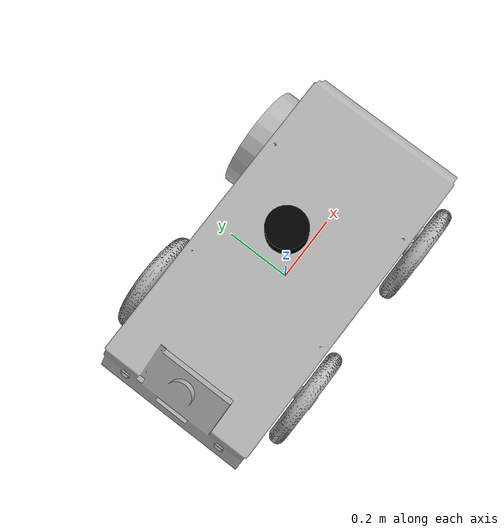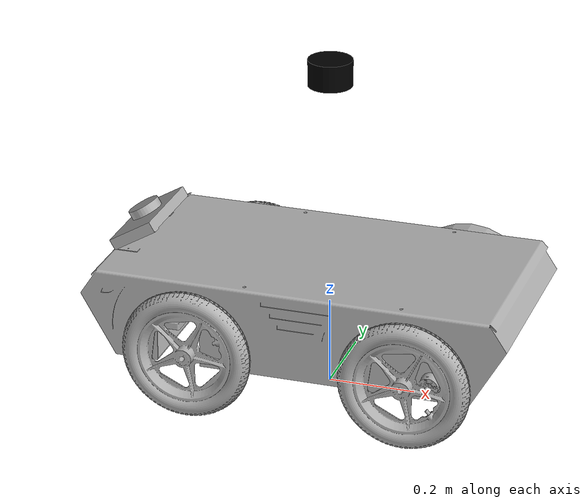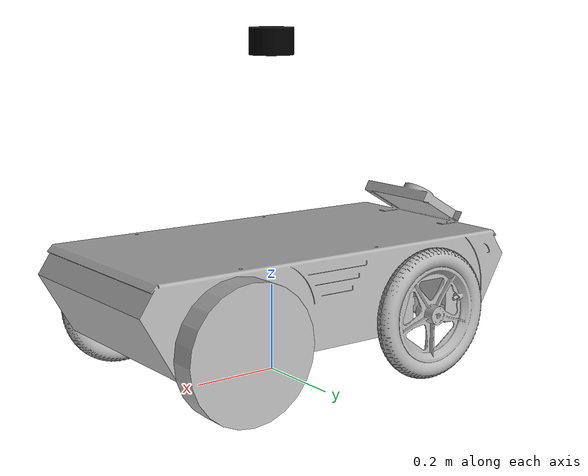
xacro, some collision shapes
<?xml version="1.0" ?>
<robot name="diadem" xmlns:xacro="http://www.ros.org/wiki/xacro">

<xacro:include filename="$(find diadem_description)/urdf/materials.xacro" />
<xacro:include filename="$(find diadem_description)/urdf/diadem.trans" />
<xacro:include filename="$(find diadem_description)/urdf/diadem.gazebo" />

<link name="base_link">
  <inertial>
    <!-- CoM slightly above geometric center; Z≈0.15 (half of 0.30m body height) -->
    <origin xyz="0.0 0.0 0.15" rpy="0 0 0"/>
    <mass value="90.0"/>
    <inertia ixx="3.112" iyy="5.595" izz="7.357" ixy="0.0" iyz="0.0" ixz="0.0"/>
  </inertial>
  <visual>
    <!-- Z offset 0.01m aligns mesh axle (Z=0.14m) with wheel joint height (Z=0.15m). Front faces +X. -->
    <origin xyz="0 0 0.01" rpy="0 0 0"/>
    <geometry>
      <mesh filename="package://diadem_description/meshes/base_link.stl" scale="0.001 0.001 0.001"/>
    </geometry>
    <material name="silver"/>
  </visual>
  <collision name="base_link_collision">
    <origin xyz="0 0 0.25" rpy="0 0 0"/>
    <geometry>
      <box size="0.42 0.38 0.24"/>
    </geometry>
  </collision>
</link>

<!-- =================== WHEELS ===================
     Radius = 0.15 m, width = 0.06 m, mass = 11.4 kg
     Ixx = Izz = m/12*(3r²+h²) = 0.068
     Iyy        = m*r²/2        = 0.128  -->

<link name="RR_wheel_1">
  <inertial>
    <origin xyz="0.0 0.0 0.0" rpy="0 0 0"/>
    <mass value="11.4"/>
    <inertia ixx="0.068" iyy="0.128" izz="0.068" ixy="0.0" iyz="0.0" ixz="0.0"/>
  </inertial>
  <visual>
    <origin xyz="-0.302688 -0.283906 -0.140288" rpy="0 0 0"/>
    <geometry>
      <mesh filename="package://diadem_description/meshes/link5_1.stl" scale="0.001 0.001 0.001"/>
    </geometry>
    <material name="silver"/>
  </visual>
  <collision name="RR_wheel_1_collision">
    <origin xyz="0 0 0" rpy="1.57079632679 0 0"/>
    <geometry>
      <cylinder radius="0.15" length="0.06"/>
    </geometry>
  </collision>
</link>

<link name="FL_wheel_1">
  <inertial>
    <origin xyz="0.0 0.0 0.0" rpy="0 0 0"/>
    <mass value="11.4"/>
    <inertia ixx="0.068" iyy="0.128" izz="0.068" ixy="0.0" iyz="0.0" ixz="0.0"/>
  </inertial>
  <visual>
    <origin xyz="0.288011 0.282104 -0.137319" rpy="0 0 0"/>
    <geometry>
      <mesh filename="package://diadem_description/meshes/link2_1.stl" scale="0.001 0.001 0.001"/>
    </geometry>
    <material name="silver"/>
  </visual>
  <collision name="FL_wheel_1_collision">
    <origin xyz="0 0 0" rpy="1.57079632679 0 0"/>
    <geometry>
      <cylinder radius="0.15" length="0.06"/>
    </geometry>
  </collision>
</link>

<link name="RL_wheel_1">
  <inertial>
    <origin xyz="0.0 0.0 0.0" rpy="0 0 0"/>
    <mass value="11.4"/>
    <inertia ixx="0.068" iyy="0.128" izz="0.068" ixy="0.0" iyz="0.0" ixz="0.0"/>
  </inertial>
  <visual>
    <origin xyz="-0.302686 0.286194 -0.140291" rpy="0 0 0"/>
    <geometry>
      <mesh filename="package://diadem_description/meshes/link4_1.stl" scale="0.001 0.001 0.001"/>
    </geometry>
    <material name="silver"/>
  </visual>
  <collision name="RL_wheel_1_collision">
    <origin xyz="0 0 0" rpy="1.57079632679 0 0"/>
    <geometry>
      <cylinder radius="0.15" length="0.06"/>
    </geometry>
  </collision>
</link>

<link name="FR_wheel_1">
  <inertial>
    <origin xyz="0.0 0.0 0.0" rpy="0 0 0"/>
    <mass value="11.4"/>
    <inertia ixx="0.068" iyy="0.128" izz="0.068" ixy="0.0" iyz="0.0" ixz="0.0"/>
  </inertial>
  <visual>
    <origin xyz="0.288015 -0.277843 -0.145030" rpy="0 0 0"/>
    <geometry>
      <mesh filename="package://diadem_description/meshes/link3_1.stl" scale="0.001 0.001 0.001"/>
    </geometry>
    <material name="silver"/>
  </visual>
  <collision name="FR_wheel_1_collision">
    <origin xyz="0 0 0" rpy="1.57079632679 0 0"/>
    <geometry>
      <cylinder radius="0.15" length="0.06"/>
    </geometry>
  </collision>
</link>

<!-- =================== LiDAR =================== -->
<!-- Modelled as RP-LiDAR A3 equivalent: r=0.05m, h=0.06m, mass=0.19kg -->
<link name="lidar">
  <inertial>
    <origin xyz="0 0 0" rpy="0 0 0"/>
    <mass value="0.19"/>
    <inertia ixx="0.0002" iyy="0.0002" izz="0.0003" ixy="0.0" iyz="0.0" ixz="0.0"/>
  </inertial>
  <visual>
    <origin xyz="0 0 0" rpy="0 0 0"/>
    <geometry>
      <cylinder radius="0.05" length="0.06"/>
    </geometry>
    <material name="black"/>
  </visual>
  <collision>
    <origin xyz="0 0 0" rpy="0 0 0"/>
    <geometry>
      <cylinder radius="0.05" length="0.06"/>
    </geometry>
  </collision>
</link>

<!-- =================== FIXED LINKS =================== -->
<link name="imu_link"/>
<link name="camera_link"/>
<link name="camera_link_optical"/>
<link name="gps_link"/>

<!-- =================== JOINTS =================== -->

<!-- IMU at ~top of body box: body H=0.30 m -->
<joint name="imu_joint" type="fixed">
    <origin rpy="0 0 0" xyz="0.0 0.0 0.30"/>
    <parent link="base_link"/>
    <child link="imu_link"/>
</joint>

<joint name="gps_joint" type="fixed">
    <origin rpy="0 0 0" xyz="0.0 0.0 0.31"/>
    <parent link="base_link"/>
    <child link="gps_link"/>
</joint>

<!-- Wheel joints
     X = ±wheelbase/2 = ±0.25 m
     Y = ±track/2     = ±0.26 m  (track=0.52m, half=0.26m)
     Z = wheel radius  = 0.15 m (wheel hub height above base_link origin)
-->

<!-- RR: Rear-Right  → X=-0.25, Y=-0.26 -->
<joint name="RR_wheel_joint" type="continuous">
  <origin xyz="-0.25 -0.26 0.15" rpy="0 0 0"/>
  <parent link="base_link"/>
  <child link="RR_wheel_1"/>
  <axis xyz="0.0 1.0 0.0"/>
</joint>

<!-- FL: Front-Left  → X=+0.25, Y=+0.26 -->
<joint name="FL_wheel_joint" type="continuous">
  <origin xyz="0.25 0.26 0.15" rpy="0 0 0"/>
  <parent link="base_link"/>
  <child link="FL_wheel_1"/>
  <axis xyz="0.0 1.0 0.0"/>
</joint>

<!-- RL: Rear-Left   → X=-0.25, Y=+0.26 -->
<joint name="RL_wheel_joint" type="continuous">
  <origin xyz="-0.25 0.26 0.15" rpy="0 0 0"/>
  <parent link="base_link"/>
  <child link="RL_wheel_1"/>
  <axis xyz="0.0 1.0 0.0"/>
</joint>

<!-- FR: Front-Right → X=+0.25, Y=-0.26 -->
<joint name="FR_wheel_joint" type="continuous">
  <origin xyz="0.25 -0.26 0.15" rpy="0 0 0"/>
  <parent link="base_link"/>
  <child link="FR_wheel_1"/>
  <axis xyz="0.0 1.0 0.0"/>
</joint>

<!-- LiDAR: mounted on top of body, centred, at body_H + half_lidar_H = 0.30+0.03 = 0.33m
     Add 0.42m additional mast to clear the body and give good scan plane -->
<joint name="lidar_joint" type="fixed">
  <origin xyz="0.0 0.0 0.75" rpy="0 0 0"/>
  <parent link="base_link"/>
  <child link="lidar"/>
</joint>

<!-- Camera: slightly ahead of centre, tilted down 15° -->
<joint name="camera_joint" type="fixed">
    <parent link="base_link"/>
    <child link="camera_link"/>
    <origin xyz="0.30 0.0 0.55" rpy="0.0 0.26 0"/>
</joint>

<joint name="camera_optical_joint" type="fixed">
  <parent link="camera_link"/>
  <child link="camera_link_optical"/>
  <origin xyz="0 0 0" rpy="-1.57079632679 0 -1.57079632679"/>
</joint>

</robot>

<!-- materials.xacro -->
<robot name="diadem" xmlns:xacro="http://www.ros.org/wiki/xacro" >

<material name="silver">
  <color rgba="0.700 0.700 0.700 1.000"/>
</material>
<material name="black">
  <color rgba="0 0 0 1"/>
</material>

</robot>
